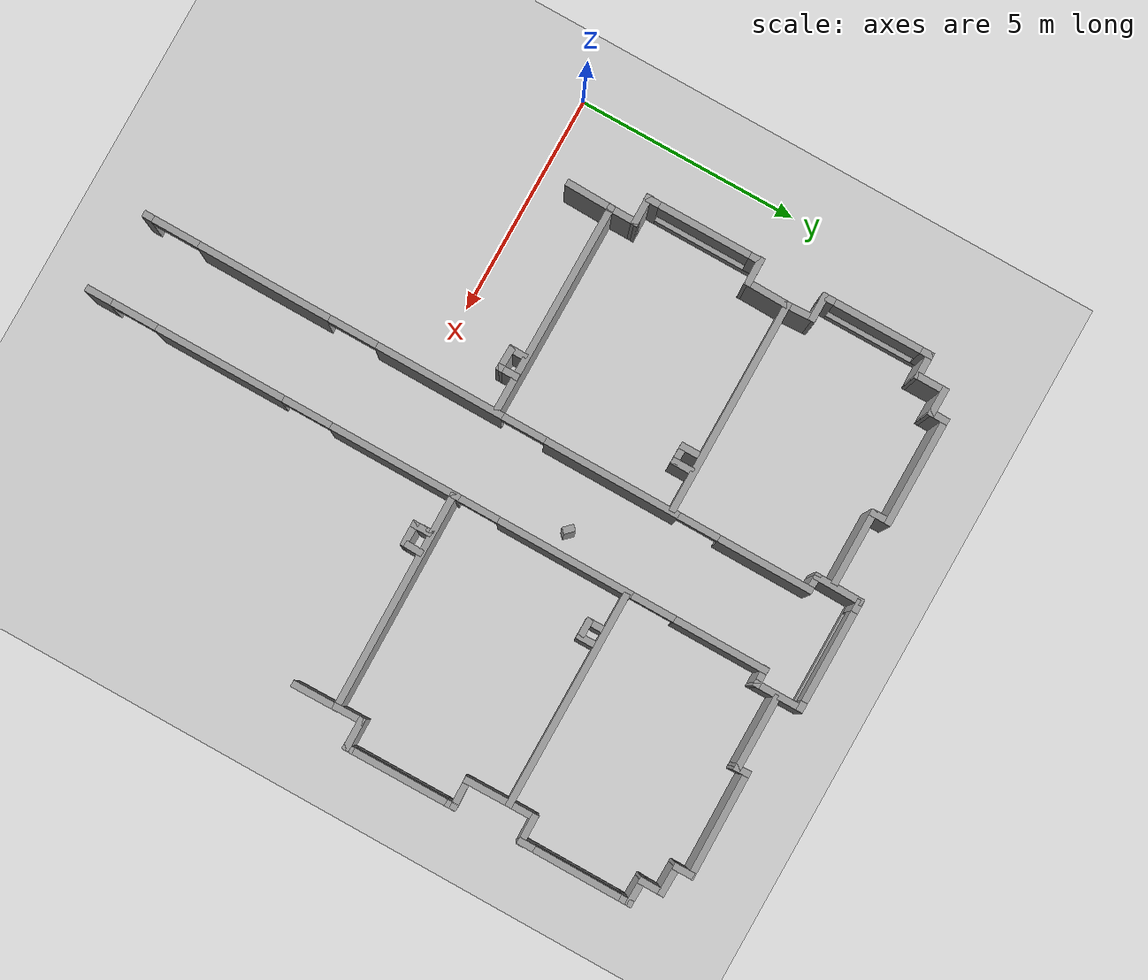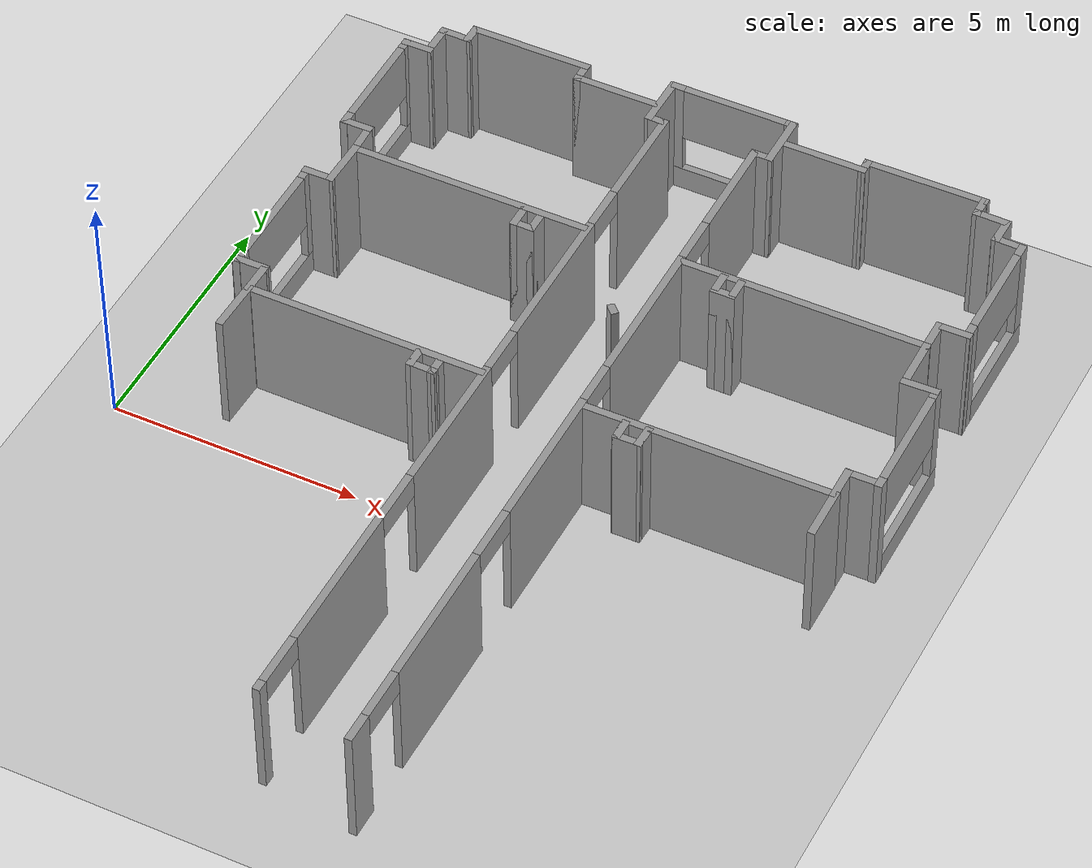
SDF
<sdf version="1.6">
 <world name="default">
  <model name="ground_plane">
   <static>1</static>
   <link name="link">
    <collision name="collision">
     <geometry><plane><normal>0 0 1</normal><size>100 100</size></plane></geometry>
     <surface><friction><ode><mu>100</mu><mu2>50</mu2></ode></friction></surface>
    </collision>
    <visual name="visual">
     <cast_shadows>0</cast_shadows>
     <geometry><plane><normal>0 0 1</normal><size>100 100</size></plane></geometry>
     <material>
      <script><uri>file://media/materials/scripts/gazebo.material</uri><name>Gazebo/Grey</name></script>
     </material>
    </visual>
   </link>
  </model>
  <model name="Ex-diei">
   <pose>7.71315 -3.61023 0 0 -0 0</pose>
   <link name="Wall_100">
    <collision name="Wall_100_Collision">
     <geometry><box><size>0.732631 0.15 2.5</size></box></geometry>
     <pose>0 0 1.25 0 -0 0</pose>
    </collision>
    <visual name="Wall_100_Visual">
     <pose>0 0 1.25 0 -0 0</pose>
     <geometry><box><size>0.732631 0.15 2.5</size></box></geometry>
     <material>
      <script><uri>file://media/materials/scripts/gazebo.material</uri><name>Gazebo/Grey</name></script>
      <ambient>1 1 1 1</ambient>
     </material>
    </visual>
    <pose>5.55171 12.961 0 0 -0 3.12236</pose>
   </link>
   <link name="Wall_101">
    <collision name="Wall_101_Collision">
     <geometry><box><size>0.486208 0.15 2.5</size></box></geometry>
     <pose>0 0 1.25 0 -0 0</pose>
    </collision>
    <visual name="Wall_101_Visual">
     <pose>0 0 1.25 0 -0 0</pose>
     <geometry><box><size>0.486208 0.15 2.5</size></box></geometry>
     <material>
      <script><uri>file://media/materials/scripts/gazebo.material</uri><name>Gazebo/Grey</name></script>
      <ambient>1 1 1 1</ambient>
     </material>
    </visual>
    <pose>5.25829 13.1344 0 0 -0 1.58363</pose>
   </link>
   <link name="Wall_102">
    <collision name="Wall_102_Collision">
     <geometry><box><size>2.49145 0.15 2.5</size></box></geometry>
     <pose>0 0 1.25 0 -0 0</pose>
    </collision>
    <visual name="Wall_102_Visual">
     <pose>0 0 1.25 0 -0 0</pose>
     <geometry><box><size>2.49145 0.15 2.5</size></box></geometry>
     <material>
      <script><uri>file://media/materials/scripts/gazebo.material</uri><name>Gazebo/Grey</name></script>
      <ambient>1 1 1 1</ambient>
     </material>
    </visual>
    <pose>4.08979 13.2913 0 0 0 -3.13236</pose>
   </link>
   <link name="Wall_103">
    <collision name="Wall_103_Collision">
     <geometry><box><size>0.362449 0.15 2.5</size></box></geometry>
     <pose>0 0 1.25 0 -0 0</pose>
    </collision>
    <visual name="Wall_103_Visual">
     <pose>0 0 1.25 0 -0 0</pose>
     <geometry><box><size>0.362449 0.15 2.5</size></box></geometry>
     <material>
      <script><uri>file://media/materials/scripts/gazebo.material</uri><name>Gazebo/Grey</name></script>
      <ambient>1 1 1 1</ambient>
     </material>
    </visual>
    <pose>2.92127 13.1743 0 0 0 -1.55045</pose>
   </link>
   <link name="Wall_104">
    <collision name="Wall_104_Collision">
     <geometry><box><size>1.75 0.15 2.5</size></box></geometry>
     <pose>0 0 1.25 0 -0 0</pose>
    </collision>
    <visual name="Wall_104_Visual">
     <pose>0 0 1.25 0 -0 0</pose>
     <geometry><box><size>1.75 0.15 2.5</size></box></geometry>
     <material>
      <script><uri>file://media/materials/scripts/gazebo.material</uri><name>Gazebo/Grey</name></script>
      <ambient>1 1 1 1</ambient>
     </material>
    </visual>
    <pose>2.11911 13.0681 0 0 -0 3.14159</pose>
   </link>
   <link name="Wall_106">
    <collision name="Wall_106_Collision">
     <geometry><box><size>4.99982 0.15 2.5</size></box></geometry>
     <pose>0 0 1.25 0 -0 0</pose>
    </collision>
    <visual name="Wall_106_Visual">
     <pose>0 0 1.25 0 -0 0</pose>
     <geometry><box><size>4.99982 0.15 2.5</size></box></geometry>
     <material>
      <script><uri>file://media/materials/scripts/gazebo.material</uri><name>Gazebo/Grey</name></script>
      <ambient>1 1 1 1</ambient>
     </material>
    </visual>
    <pose>3.38383 5.40187 0 0 -0 0.00924</pose>
   </link>
   <link name="Wall_107">
    <collision name="Wall_107_Collision">
     <geometry><box><size>0.711686 0.15 2.5</size></box></geometry>
     <pose>0 0 1.25 0 -0 0</pose>
    </collision>
    <visual name="Wall_107_Visual">
     <pose>0 0 1.25 0 -0 0</pose>
     <geometry><box><size>0.711686 0.15 2.5</size></box></geometry>
     <material>
      <script><uri>file://media/materials/scripts/gazebo.material</uri><name>Gazebo/Grey</name></script>
      <ambient>1 1 1 1</ambient>
     </material>
    </visual>
    <pose>5.80561 5.7051 0 0 -0 1.58155</pose>
   </link>
   <link name="Wall_108">
    <collision name="Wall_108_Collision">
     <geometry><box><size>0.750065 0.15 2.5</size></box></geometry>
     <pose>0 0 1.25 0 -0 0</pose>
    </collision>
    <visual name="Wall_108_Visual">
     <pose>0 0 1.25 0 -0 0</pose>
     <geometry><box><size>0.750065 0.15 2.5</size></box></geometry>
     <material>
      <script><uri>file://media/materials/scripts/gazebo.material</uri><name>Gazebo/Grey</name></script>
      <ambient>1 1 1 1</ambient>
     </material>
    </visual>
    <pose>6.10261 5.99563 0 0 -0 0.010773</pose>
   </link>
   <link name="Wall_109">
    <pose>6.40339 7.22457 0 0 -0 1.57542</pose>
    <visual name="Wall_109_Visual_0">
     <pose>-1.19042 0 1.25 0 -0 0</pose>
     <geometry><box><size>0.233536 0.15 2.5</size></box></geometry>
     <material>
      <script><uri>file://media/materials/scripts/gazebo.material</uri><name>Gazebo/Grey</name></script>
      <ambient>1 1 1 1</ambient>
     </material>
    </visual>
    <collision name="Wall_109_Collision_0">
     <geometry><box><size>0.233536 0.15 2.5</size></box></geometry>
     <pose>-1.19042 0 1.25 0 -0 0</pose>
    </collision>
    <visual name="Wall_109_Visual_1">
     <pose>0.116768 0 0.25 0 -0 0</pose>
     <geometry><box><size>2.38084 0.15 0.5</size></box></geometry>
     <material>
      <script><uri>file://media/materials/scripts/gazebo.material</uri><name>Gazebo/Grey</name></script>
      <ambient>1 1 1 1</ambient>
     </material>
    </visual>
    <collision name="Wall_109_Collision_1">
     <geometry><box><size>2.38084 0.15 0.5</size></box></geometry>
     <pose>0.116768 0 0.25 0 -0 0</pose>
    </collision>
    <visual name="Wall_109_Visual_2">
     <pose>1.1833 0 1.5 0 -0 0</pose>
     <geometry><box><size>0.247773 0.15 2</size></box></geometry>
     <material>
      <script><uri>file://media/materials/scripts/gazebo.material</uri><name>Gazebo/Grey</name></script>
      <ambient>1 1 1 1</ambient>
     </material>
    </visual>
    <collision name="Wall_109_Collision_2">
     <geometry><box><size>0.247773 0.15 2</size></box></geometry>
     <pose>1.1833 0 1.5 0 -0 0</pose>
    </collision>
    <visual name="Wall_109_Visual_3">
     <pose>-0.007119 0 1.9 0 -0 0</pose>
     <geometry><box><size>2.13307 0.15 1.2</size></box></geometry>
     <material>
      <script><uri>file://media/materials/scripts/gazebo.material</uri><name>Gazebo/Grey</name></script>
      <ambient>1 1 1 1</ambient>
     </material>
    </visual>
    <collision name="Wall_109_Collision_3">
     <geometry><box><size>2.13307 0.15 1.2</size></box></geometry>
     <pose>-0.007119 0 1.9 0 -0 0</pose>
    </collision>
   </link>
   <link name="Wall_110">
    <collision name="Wall_110_Collision">
     <geometry><box><size>0.737495 0.15 2.5</size></box></geometry>
     <pose>0 0 1.25 0 -0 0</pose>
    </collision>
    <visual name="Wall_110_Visual">
     <pose>0 0 1.25 0 -0 0</pose>
     <geometry><box><size>0.737495 0.15 2.5</size></box></geometry>
     <material>
      <script><uri>file://media/materials/scripts/gazebo.material</uri><name>Gazebo/Grey</name></script>
      <ambient>1 1 1 1</ambient>
     </material>
    </visual>
    <pose>6.09764 8.45351 0 0 0 -3.10858</pose>
   </link>
   <link name="Wall_111">
    <collision name="Wall_111_Collision">
     <geometry><box><size>1.11417 0.15 2.5</size></box></geometry>
     <pose>0 0 1.25 0 -0 0</pose>
    </collision>
    <visual name="Wall_111_Visual">
     <pose>0 0 1.25 0 -0 0</pose>
     <geometry><box><size>1.11417 0.15 2.5</size></box></geometry>
     <material>
      <script><uri>file://media/materials/scripts/gazebo.material</uri><name>Gazebo/Grey</name></script>
      <ambient>1 1 1 1</ambient>
     </material>
    </visual>
    <pose>5.79813 8.93083 0 0 -0 1.58308</pose>
   </link>
   <link name="Wall_113">
    <collision name="Wall_113_Collision">
     <geometry><box><size>0.25 0.15 2.5</size></box></geometry>
     <pose>0 0 1.25 0 -0 0</pose>
    </collision>
    <visual name="Wall_113_Visual">
     <pose>0 0 1.25 0 -0 0</pose>
     <geometry><box><size>0.25 0.15 2.5</size></box></geometry>
     <material>
      <script><uri>file://media/materials/scripts/gazebo.material</uri><name>Gazebo/Grey</name></script>
      <ambient>0 0 0 0</ambient>
     </material>
    </visual>
    <pose>0.387945 7.74777 0 0 -0 2.35619</pose>
   </link>
   <link name="Wall_115">
    <collision name="Wall_115_Collision">
     <geometry><box><size>0.5 0.15 2.5</size></box></geometry>
     <pose>0 0 1.25 0 -0 0</pose>
    </collision>
    <visual name="Wall_115_Visual">
     <pose>0 0 1.25 0 -0 0</pose>
     <geometry><box><size>0.5 0.15 2.5</size></box></geometry>
     <material>
      <script><uri>file://media/materials/scripts/gazebo.material</uri><name>Gazebo/Grey</name></script>
      <ambient>1 1 1 1</ambient>
     </material>
    </visual>
    <pose>1.81628 9.19179 0 0 0 -1.5708</pose>
   </link>
   <link name="Wall_116">
    <collision name="Wall_116_Collision">
     <geometry><box><size>0.5 0.15 2.5</size></box></geometry>
     <pose>0 0 1.25 0 -0 0</pose>
    </collision>
    <visual name="Wall_116_Visual">
     <pose>0 0 1.25 0 -0 0</pose>
     <geometry><box><size>0.5 0.15 2.5</size></box></geometry>
     <material>
      <script><uri>file://media/materials/scripts/gazebo.material</uri><name>Gazebo/Grey</name></script>
      <ambient>1 1 1 1</ambient>
     </material>
    </visual>
    <pose>1.99127 9.01679 0 0 -0 0</pose>
   </link>
   <link name="Wall_117">
    <collision name="Wall_117_Collision">
     <geometry><box><size>0.5 0.15 2.5</size></box></geometry>
     <pose>0 0 1.25 0 -0 0</pose>
    </collision>
    <visual name="Wall_117_Visual">
     <pose>0 0 1.25 0 -0 0</pose>
     <geometry><box><size>0.5 0.15 2.5</size></box></geometry>
     <material>
      <script><uri>file://media/materials/scripts/gazebo.material</uri><name>Gazebo/Grey</name></script>
      <ambient>1 1 1 1</ambient>
     </material>
    </visual>
    <pose>2.16628 9.19179 0 0 -0 1.5708</pose>
   </link>
   <link name="Wall_124">
    <collision name="Wall_124_Collision">
     <geometry><box><size>1.0872 0.15 2.5</size></box></geometry>
     <pose>0 0 1.25 0 -0 0</pose>
    </collision>
    <visual name="Wall_124_Visual">
     <pose>0 0 1.25 0 -0 0</pose>
     <geometry><box><size>1.0872 0.15 2.5</size></box></geometry>
     <material>
      <script><uri>file://media/materials/scripts/gazebo.material</uri><name>Gazebo/Grey</name></script>
      <ambient>1 1 1 1</ambient>
     </material>
    </visual>
    <pose>5.82137 4.94714 0 0 -0 1.57973</pose>
   </link>
   <link name="Wall_126">
    <collision name="Wall_126_Collision">
     <geometry><box><size>0.25 0.15 2.5</size></box></geometry>
     <pose>0 0 1.25 0 -0 0</pose>
    </collision>
    <visual name="Wall_126_Visual">
     <pose>0 0 1.25 0 -0 0</pose>
     <geometry><box><size>0.25 0.15 2.5</size></box></geometry>
     <material>
      <script><uri>file://media/materials/scripts/gazebo.material</uri><name>Gazebo/Grey</name></script>
      <ambient>1 1 1 1</ambient>
     </material>
    </visual>
    <pose>1.81991 5.27998 0 0 0 -1.5708</pose>
   </link>
   <link name="Wall_128">
    <collision name="Wall_128_Collision">
     <geometry><box><size>0.493722 0.15 2.5</size></box></geometry>
     <pose>0 0 1.25 0 -0 0</pose>
    </collision>
    <visual name="Wall_128_Visual">
     <pose>0 0 1.25 0 -0 0</pose>
     <geometry><box><size>0.493722 0.15 2.5</size></box></geometry>
     <material>
      <script><uri>file://media/materials/scripts/gazebo.material</uri><name>Gazebo/Grey</name></script>
      <ambient>1 1 1 1</ambient>
     </material>
    </visual>
    <pose>2.26046 5.16946 0 0 0 -1.60137</pose>
   </link>
   <link name="Wall_129">
    <collision name="Wall_129_Collision">
     <geometry><box><size>0.575524 0.15 2.5</size></box></geometry>
     <pose>0 0 1.25 0 -0 0</pose>
    </collision>
    <visual name="Wall_129_Visual">
     <pose>0 0 1.25 0 -0 0</pose>
     <geometry><box><size>0.575524 0.15 2.5</size></box></geometry>
     <material>
      <script><uri>file://media/materials/scripts/gazebo.material</uri><name>Gazebo/Grey</name></script>
      <ambient>1 1 1 1</ambient>
     </material>
    </visual>
    <pose>2.04245 4.99558 0 0 0 -3.13172</pose>
   </link>
   <link name="Wall_130">
    <collision name="Wall_130_Collision">
     <geometry><box><size>0.467311 0.15 2.5</size></box></geometry>
     <pose>0 0 1.25 0 -0 0</pose>
    </collision>
    <visual name="Wall_130_Visual">
     <pose>0 0 1.25 0 -0 0</pose>
     <geometry><box><size>0.467311 0.15 2.5</size></box></geometry>
     <material>
      <script><uri>file://media/materials/scripts/gazebo.material</uri><name>Gazebo/Grey</name></script>
      <ambient>1 1 1 1</ambient>
     </material>
    </visual>
    <pose>1.82812 5.15213 0 0 -0 1.58073</pose>
   </link>
   <link name="Wall_2">
    <collision name="Wall_2_Collision">
     <geometry><box><size>1.13505 0.15 2.5</size></box></geometry>
     <pose>0 0 1.25 0 -0 0</pose>
    </collision>
    <visual name="Wall_2_Visual">
     <pose>0 0 1.25 0 -0 0</pose>
     <geometry><box><size>1.13505 0.15 2.5</size></box></geometry>
     <material>
      <script><uri>file://media/materials/scripts/gazebo.material</uri><name>Gazebo/Grey</name></script>
      <ambient>1 1 1 1</ambient>
     </material>
    </visual>
    <pose>-1.22223 13.0876 0 0 0 -1.58602</pose>
   </link>
   <link name="Wall_3">
    <collision name="Wall_3_Collision">
     <geometry><box><size>0.447338 0.15 2.5</size></box></geometry>
     <pose>0 0 1.25 0 -0 0</pose>
    </collision>
    <visual name="Wall_3_Visual">
     <pose>0 0 1.25 0 -0 0</pose>
     <geometry><box><size>0.447338 0.15 2.5</size></box></geometry>
     <material>
      <script><uri>file://media/materials/scripts/gazebo.material</uri><name>Gazebo/Grey</name></script>
      <ambient>1 1 1 1</ambient>
     </material>
    </visual>
    <pose>-1.08116 12.5897 0 0 0 -0.036543</pose>
   </link>
   <link name="Wall_31">
    <pose>0.916529 4.73851 0 0 -0 1.56885</pose>
    <visual name="Wall_31_Visual_0">
     <pose>-7.62024 0 1.25 0 -0 0</pose>
     <geometry><box><size>0.598912 0.15 2.5</size></box></geometry>
     <material>
      <script><uri>file://media/materials/scripts/gazebo.material</uri><name>Gazebo/Grey</name></script>
      <ambient>1 1 1 1</ambient>
     </material>
    </visual>
    <collision name="Wall_31_Collision_0">
     <geometry><box><size>0.598912 0.15 2.5</size></box></geometry>
     <pose>-7.62024 0 1.25 0 -0 0</pose>
    </collision>
    <visual name="Wall_31_Visual_1">
     <pose>-4.79958 0 1.25 0 -0 0</pose>
     <geometry><box><size>2.95172 0.15 2.5</size></box></geometry>
     <material>
      <script><uri>file://media/materials/scripts/gazebo.material</uri><name>Gazebo/Grey</name></script>
      <ambient>1 1 1 1</ambient>
     </material>
    </visual>
    <collision name="Wall_31_Collision_1">
     <geometry><box><size>2.95172 0.15 2.5</size></box></geometry>
     <pose>-4.79958 0 1.25 0 -0 0</pose>
    </collision>
    <visual name="Wall_31_Visual_2">
     <pose>-0.714987 0 1.25 0 -0 0</pose>
     <geometry><box><size>2.99001 0.15 2.5</size></box></geometry>
     <material>
      <script><uri>file://media/materials/scripts/gazebo.material</uri><name>Gazebo/Grey</name></script>
      <ambient>1 1 1 1</ambient>
     </material>
    </visual>
    <collision name="Wall_31_Collision_2">
     <geometry><box><size>2.99001 0.15 2.5</size></box></geometry>
     <pose>-0.714987 0 1.25 0 -0 0</pose>
    </collision>
    <visual name="Wall_31_Visual_3">
     <pose>3.22873 0 1.25 0 -0 0</pose>
     <geometry><box><size>3.09741 0.15 2.5</size></box></geometry>
     <material>
      <script><uri>file://media/materials/scripts/gazebo.material</uri><name>Gazebo/Grey</name></script>
      <ambient>1 1 1 1</ambient>
     </material>
    </visual>
    <collision name="Wall_31_Collision_3">
     <geometry><box><size>3.09741 0.15 2.5</size></box></geometry>
     <pose>3.22873 0 1.25 0 -0 0</pose>
    </collision>
    <visual name="Wall_31_Visual_4">
     <pose>6.84281 0 1.25 0 -0 0</pose>
     <geometry><box><size>2.15378 0.15 2.5</size></box></geometry>
     <material>
      <script><uri>file://media/materials/scripts/gazebo.material</uri><name>Gazebo/Grey</name></script>
      <ambient>1 1 1 1</ambient>
     </material>
    </visual>
    <collision name="Wall_31_Collision_4">
     <geometry><box><size>2.15378 0.15 2.5</size></box></geometry>
     <pose>6.84281 0 1.25 0 -0 0</pose>
    </collision>
    <visual name="Wall_31_Visual_5">
     <pose>-6.79811 0 2.25 0 -0 0</pose>
     <geometry><box><size>1.04534 0.15 0.5</size></box></geometry>
     <material>
      <script><uri>file://media/materials/scripts/gazebo.material</uri><name>Gazebo/Grey</name></script>
      <ambient>1 1 1 1</ambient>
     </material>
    </visual>
    <collision name="Wall_31_Collision_5">
     <geometry><box><size>1.04534 0.15 0.5</size></box></geometry>
     <pose>-6.79811 0 2.25 0 -0 0</pose>
    </collision>
    <visual name="Wall_31_Visual_6">
     <pose>-2.76686 0 2.25 0 -0 0</pose>
     <geometry><box><size>1.11373 0.15 0.5</size></box></geometry>
     <material>
      <script><uri>file://media/materials/scripts/gazebo.material</uri><name>Gazebo/Grey</name></script>
      <ambient>1 1 1 1</ambient>
     </material>
    </visual>
    <collision name="Wall_31_Collision_6">
     <geometry><box><size>1.11373 0.15 0.5</size></box></geometry>
     <pose>-2.76686 0 2.25 0 -0 0</pose>
    </collision>
    <visual name="Wall_31_Visual_7">
     <pose>1.23002 0 2.25 0 -0 0</pose>
     <geometry><box><size>0.9 0.15 0.5</size></box></geometry>
     <material>
      <script><uri>file://media/materials/scripts/gazebo.material</uri><name>Gazebo/Grey</name></script>
      <ambient>1 1 1 1</ambient>
     </material>
    </visual>
    <collision name="Wall_31_Collision_7">
     <geometry><box><size>0.9 0.15 0.5</size></box></geometry>
     <pose>1.23002 0 2.25 0 -0 0</pose>
    </collision>
    <visual name="Wall_31_Visual_8">
     <pose>5.27168 0 2.25 0 -0 0</pose>
     <geometry><box><size>0.988484 0.15 0.5</size></box></geometry>
     <material>
      <script><uri>file://media/materials/scripts/gazebo.material</uri><name>Gazebo/Grey</name></script>
      <ambient>1 1 1 1</ambient>
     </material>
    </visual>
    <collision name="Wall_31_Collision_8">
     <geometry><box><size>0.988484 0.15 0.5</size></box></geometry>
     <pose>5.27168 0 2.25 0 -0 0</pose>
    </collision>
   </link>
   <link name="Wall_32">
    <collision name="Wall_32_Collision">
     <geometry><box><size>0.477444 0.15 2.5</size></box></geometry>
     <pose>0 0 1.25 0 -0 0</pose>
    </collision>
    <visual name="Wall_32_Visual">
     <pose>0 0 1.25 0 -0 0</pose>
     <geometry><box><size>0.477444 0.15 2.5</size></box></geometry>
     <material>
      <script><uri>file://media/materials/scripts/gazebo.material</uri><name>Gazebo/Grey</name></script>
      <ambient>1 1 1 1</ambient>
     </material>
    </visual>
    <pose>1.08807 12.5845 0 0 -0 0.007836</pose>
   </link>
   <link name="Wall_33">
    <collision name="Wall_33_Collision">
     <geometry><box><size>1.15594 0.15 2.5</size></box></geometry>
     <pose>0 0 1.25 0 -0 0</pose>
    </collision>
    <visual name="Wall_33_Visual">
     <pose>0 0 1.25 0 -0 0</pose>
     <geometry><box><size>1.15594 0.15 2.5</size></box></geometry>
     <material>
      <script><uri>file://media/materials/scripts/gazebo.material</uri><name>Gazebo/Grey</name></script>
      <ambient>1 1 1 1</ambient>
     </material>
    </visual>
    <pose>1.25381 13.0887 0 0 -0 1.56678</pose>
   </link>
   <link name="Wall_34">
    <pose>0.038325 13.5917 0 0 -0 3.14159</pose>
    <visual name="Wall_34_Visual_0">
     <pose>-1.17838 0 1.25 0 -0 0</pose>
     <geometry><box><size>0.218241 0.15 2.5</size></box></geometry>
     <material>
      <script><uri>file://media/materials/scripts/gazebo.material</uri><name>Gazebo/Grey</name></script>
      <ambient>1 1 1 1</ambient>
     </material>
    </visual>
    <collision name="Wall_34_Collision_0">
     <geometry><box><size>0.218241 0.15 2.5</size></box></geometry>
     <pose>-1.17838 0 1.25 0 -0 0</pose>
    </collision>
    <visual name="Wall_34_Visual_1">
     <pose>0.109121 0 0.25 0 -0 0</pose>
     <geometry><box><size>2.35676 0.15 0.5</size></box></geometry>
     <material>
      <script><uri>file://media/materials/scripts/gazebo.material</uri><name>Gazebo/Grey</name></script>
      <ambient>1 1 1 1</ambient>
     </material>
    </visual>
    <collision name="Wall_34_Collision_1">
     <geometry><box><size>2.35676 0.15 0.5</size></box></geometry>
     <pose>0.109121 0 0.25 0 -0 0</pose>
    </collision>
    <visual name="Wall_34_Visual_2">
     <pose>1.14473 0 1.5 0 -0 0</pose>
     <geometry><box><size>0.285533 0.15 2</size></box></geometry>
     <material>
      <script><uri>file://media/materials/scripts/gazebo.material</uri><name>Gazebo/Grey</name></script>
      <ambient>1 1 1 1</ambient>
     </material>
    </visual>
    <collision name="Wall_34_Collision_2">
     <geometry><box><size>0.285533 0.15 2</size></box></geometry>
     <pose>1.14473 0 1.5 0 -0 0</pose>
    </collision>
    <visual name="Wall_34_Visual_3">
     <pose>-0.033646 0 1.9 0 -0 0</pose>
     <geometry><box><size>2.07123 0.15 1.2</size></box></geometry>
     <material>
      <script><uri>file://media/materials/scripts/gazebo.material</uri><name>Gazebo/Grey</name></script>
      <ambient>1 1 1 1</ambient>
     </material>
    </visual>
    <collision name="Wall_34_Collision_3">
     <geometry><box><size>2.07123 0.15 1.2</size></box></geometry>
     <pose>-0.033646 0 1.9 0 -0 0</pose>
    </collision>
   </link>
   <link name="Wall_36">
    <collision name="Wall_36_Collision">
     <geometry><box><size>4.88074 0.15 2.5</size></box></geometry>
     <pose>0 0 1.25 0 -0 0</pose>
    </collision>
    <visual name="Wall_36_Visual">
     <pose>0 0 1.25 0 -0 0</pose>
     <geometry><box><size>4.88074 0.15 2.5</size></box></geometry>
     <material>
      <script><uri>file://media/materials/scripts/gazebo.material</uri><name>Gazebo/Grey</name></script>
      <ambient>1 1 1 1</ambient>
     </material>
    </visual>
    <pose>-3.38208 9.39054 0 0 0 -3.14141</pose>
   </link>
   <link name="Wall_37">
    <collision name="Wall_37_Collision">
     <geometry><box><size>0.730954 0.15 2.5</size></box></geometry>
     <pose>0 0 1.25 0 -0 0</pose>
    </collision>
    <visual name="Wall_37_Visual">
     <pose>0 0 1.25 0 -0 0</pose>
     <geometry><box><size>0.730954 0.15 2.5</size></box></geometry>
     <material>
      <script><uri>file://media/materials/scripts/gazebo.material</uri><name>Gazebo/Grey</name></script>
      <ambient>1 1 1 1</ambient>
     </material>
    </visual>
    <pose>-5.75972 9.68031 0 0 -0 1.61309</pose>
   </link>
   <link name="Wall_38">
    <collision name="Wall_38_Collision">
     <geometry><box><size>0.647807 0.15 2.5</size></box></geometry>
     <pose>0 0 1.25 0 -0 0</pose>
    </collision>
    <visual name="Wall_38_Visual">
     <pose>0 0 1.25 0 -0 0</pose>
     <geometry><box><size>0.647807 0.15 2.5</size></box></geometry>
     <material>
      <script><uri>file://media/materials/scripts/gazebo.material</uri><name>Gazebo/Grey</name></script>
      <ambient>1 1 1 1</ambient>
     </material>
    </visual>
    <pose>-6.02073 9.97053 0 0 -0 3.14159</pose>
   </link>
   <link name="Wall_39">
    <pose>-6.27121 11.185 0 0 -0 1.57224</pose>
    <visual name="Wall_39_Visual_0">
     <pose>-1.1374 0 1.25 0 -0 0</pose>
     <geometry><box><size>0.311789 0.15 2.5</size></box></geometry>
     <material>
      <script><uri>file://media/materials/scripts/gazebo.material</uri><name>Gazebo/Grey</name></script>
      <ambient>1 1 1 1</ambient>
     </material>
    </visual>
    <collision name="Wall_39_Collision_0">
     <geometry><box><size>0.311789 0.15 2.5</size></box></geometry>
     <pose>-1.1374 0 1.25 0 -0 0</pose>
    </collision>
    <visual name="Wall_39_Visual_1">
     <pose>0.155894 0 0.25 0 -0 0</pose>
     <geometry><box><size>2.27479 0.15 0.5</size></box></geometry>
     <material>
      <script><uri>file://media/materials/scripts/gazebo.material</uri><name>Gazebo/Grey</name></script>
      <ambient>1 1 1 1</ambient>
     </material>
    </visual>
    <collision name="Wall_39_Collision_1">
     <geometry><box><size>2.27479 0.15 0.5</size></box></geometry>
     <pose>0.155894 0 0.25 0 -0 0</pose>
    </collision>
    <visual name="Wall_39_Visual_2">
     <pose>1.15812 0 1.5 0 -0 0</pose>
     <geometry><box><size>0.270346 0.15 2</size></box></geometry>
     <material>
      <script><uri>file://media/materials/scripts/gazebo.material</uri><name>Gazebo/Grey</name></script>
      <ambient>1 1 1 1</ambient>
     </material>
    </visual>
    <collision name="Wall_39_Collision_2">
     <geometry><box><size>0.270346 0.15 2</size></box></geometry>
     <pose>1.15812 0 1.5 0 -0 0</pose>
    </collision>
    <visual name="Wall_39_Visual_3">
     <pose>0.020721 0 1.9 0 -0 0</pose>
     <geometry><box><size>2.00445 0.15 1.2</size></box></geometry>
     <material>
      <script><uri>file://media/materials/scripts/gazebo.material</uri><name>Gazebo/Grey</name></script>
      <ambient>1 1 1 1</ambient>
     </material>
    </visual>
    <collision name="Wall_39_Collision_3">
     <geometry><box><size>2.00445 0.15 1.2</size></box></geometry>
     <pose>0.020721 0 1.9 0 -0 0</pose>
    </collision>
   </link>
   <link name="Wall_4">
    <pose>-0.956882 4.87054 0 0 0 -1.57459</pose>
    <visual name="Wall_4_Visual_0">
     <pose>-6.7014 0 1.25 0 -0 0</pose>
     <geometry><box><size>2.17477 0.15 2.5</size></box></geometry>
     <material>
      <script><uri>file://media/materials/scripts/gazebo.material</uri><name>Gazebo/Grey</name></script>
      <ambient>1 1 1 1</ambient>
     </material>
    </visual>
    <collision name="Wall_4_Collision_0">
     <geometry><box><size>2.17477 0.15 2.5</size></box></geometry>
     <pose>-6.7014 0 1.25 0 -0 0</pose>
    </collision>
    <visual name="Wall_4_Visual_1">
     <pose>-3.13377 0 1.25 0 -0 0</pose>
     <geometry><box><size>3.10149 0.15 2.5</size></box></geometry>
     <material>
      <script><uri>file://media/materials/scripts/gazebo.material</uri><name>Gazebo/Grey</name></script>
      <ambient>1 1 1 1</ambient>
     </material>
    </visual>
    <collision name="Wall_4_Collision_1">
     <geometry><box><size>3.10149 0.15 2.5</size></box></geometry>
     <pose>-3.13377 0 1.25 0 -0 0</pose>
    </collision>
    <visual name="Wall_4_Visual_2">
     <pose>0.872616 0 1.25 0 -0 0</pose>
     <geometry><box><size>2.93432 0.15 2.5</size></box></geometry>
     <material>
      <script><uri>file://media/materials/scripts/gazebo.material</uri><name>Gazebo/Grey</name></script>
      <ambient>1 1 1 1</ambient>
     </material>
    </visual>
    <collision name="Wall_4_Collision_2">
     <geometry><box><size>2.93432 0.15 2.5</size></box></geometry>
     <pose>0.872616 0 1.25 0 -0 0</pose>
    </collision>
    <visual name="Wall_4_Visual_3">
     <pose>4.97019 0 1.25 0 -0 0</pose>
     <geometry><box><size>3.0479 0.15 2.5</size></box></geometry>
     <material>
      <script><uri>file://media/materials/scripts/gazebo.material</uri><name>Gazebo/Grey</name></script>
      <ambient>1 1 1 1</ambient>
     </material>
    </visual>
    <collision name="Wall_4_Collision_3">
     <geometry><box><size>3.0479 0.15 2.5</size></box></geometry>
     <pose>4.97019 0 1.25 0 -0 0</pose>
    </collision>
    <visual name="Wall_4_Visual_4">
     <pose>7.6749 0 1.25 0 -0 0</pose>
     <geometry><box><size>0.22777 0.15 2.5</size></box></geometry>
     <material>
      <script><uri>file://media/materials/scripts/gazebo.material</uri><name>Gazebo/Grey</name></script>
      <ambient>1 1 1 1</ambient>
     </material>
    </visual>
    <collision name="Wall_4_Collision_4">
     <geometry><box><size>0.22777 0.15 2.5</size></box></geometry>
     <pose>7.6749 0 1.25 0 -0 0</pose>
    </collision>
    <visual name="Wall_4_Visual_5">
     <pose>-5.14926 0 2.25 0 -0 0</pose>
     <geometry><box><size>0.929494 0.15 0.5</size></box></geometry>
     <material>
      <script><uri>file://media/materials/scripts/gazebo.material</uri><name>Gazebo/Grey</name></script>
      <ambient>1 1 1 1</ambient>
     </material>
    </visual>
    <collision name="Wall_4_Collision_5">
     <geometry><box><size>0.929494 0.15 0.5</size></box></geometry>
     <pose>-5.14926 0 2.25 0 -0 0</pose>
    </collision>
    <visual name="Wall_4_Visual_6">
     <pose>-1.08878 0 2.25 0 -0 0</pose>
     <geometry><box><size>0.988483 0.15 0.5</size></box></geometry>
     <material>
      <script><uri>file://media/materials/scripts/gazebo.material</uri><name>Gazebo/Grey</name></script>
      <ambient>1 1 1 1</ambient>
     </material>
    </visual>
    <collision name="Wall_4_Collision_6">
     <geometry><box><size>0.988483 0.15 0.5</size></box></geometry>
     <pose>-1.08878 0 2.25 0 -0 0</pose>
    </collision>
    <visual name="Wall_4_Visual_7">
     <pose>2.89301 0 2.25 0 -0 0</pose>
     <geometry><box><size>1.10646 0.15 0.5</size></box></geometry>
     <material>
      <script><uri>file://media/materials/scripts/gazebo.material</uri><name>Gazebo/Grey</name></script>
      <ambient>1 1 1 1</ambient>
     </material>
    </visual>
    <collision name="Wall_4_Collision_7">
     <geometry><box><size>1.10646 0.15 0.5</size></box></geometry>
     <pose>2.89301 0 2.25 0 -0 0</pose>
    </collision>
    <visual name="Wall_4_Visual_8">
     <pose>7.02757 0 2.25 0 -0 0</pose>
     <geometry><box><size>1.06687 0.15 0.5</size></box></geometry>
     <material>
      <script><uri>file://media/materials/scripts/gazebo.material</uri><name>Gazebo/Grey</name></script>
      <ambient>1 1 1 1</ambient>
     </material>
    </visual>
    <collision name="Wall_4_Collision_8">
     <geometry><box><size>1.06687 0.15 0.5</size></box></geometry>
     <pose>7.02757 0 2.25 0 -0 0</pose>
    </collision>
   </link>
   <link name="Wall_40">
    <collision name="Wall_40_Collision">
     <geometry><box><size>0.639043 0.15 2.5</size></box></geometry>
     <pose>0 0 1.25 0 -0 0</pose>
    </collision>
    <visual name="Wall_40_Visual">
     <pose>0 0 1.25 0 -0 0</pose>
     <geometry><box><size>0.639043 0.15 2.5</size></box></geometry>
     <material>
      <script><uri>file://media/materials/scripts/gazebo.material</uri><name>Gazebo/Grey</name></script>
      <ambient>1 1 1 1</ambient>
     </material>
    </visual>
    <pose>-6.02845 12.4072 0 0 -0 0.015925</pose>
   </link>
   <link name="Wall_41">
    <collision name="Wall_41_Collision">
     <geometry><box><size>0.75 0.15 2.5</size></box></geometry>
     <pose>0 0 1.25 0 -0 0</pose>
    </collision>
    <visual name="Wall_41_Visual">
     <pose>0 0 1.25 0 -0 0</pose>
     <geometry><box><size>0.75 0.15 2.5</size></box></geometry>
     <material>
      <script><uri>file://media/materials/scripts/gazebo.material</uri><name>Gazebo/Grey</name></script>
      <ambient>1 1 1 1</ambient>
     </material>
    </visual>
    <pose>-5.78393 12.7111 0 0 -0 1.5708</pose>
   </link>
   <link name="Wall_42">
    <collision name="Wall_42_Collision">
     <geometry><box><size>0.670455 0.15 2.5</size></box></geometry>
     <pose>0 0 1.25 0 -0 0</pose>
    </collision>
    <visual name="Wall_42_Visual">
     <pose>0 0 1.25 0 -0 0</pose>
     <geometry><box><size>0.670455 0.15 2.5</size></box></geometry>
     <material>
      <script><uri>file://media/materials/scripts/gazebo.material</uri><name>Gazebo/Grey</name></script>
      <ambient>1 1 1 1</ambient>
     </material>
    </visual>
    <pose>-5.52371 13.0091 0 0 0 -0.007669</pose>
   </link>
   <link name="Wall_43">
    <collision name="Wall_43_Collision">
     <geometry><box><size>0.457134 0.15 2.5</size></box></geometry>
     <pose>0 0 1.25 0 -0 0</pose>
    </collision>
    <visual name="Wall_43_Visual">
     <pose>0 0 1.25 0 -0 0</pose>
     <geometry><box><size>0.457134 0.15 2.5</size></box></geometry>
     <material>
      <script><uri>file://media/materials/scripts/gazebo.material</uri><name>Gazebo/Grey</name></script>
      <ambient>1 1 1 1</ambient>
     </material>
    </visual>
    <pose>-5.26121 13.1607 0 0 -0 1.55595</pose>
   </link>
   <link name="Wall_44">
    <collision name="Wall_44_Collision">
     <geometry><box><size>2.5 0.15 2.5</size></box></geometry>
     <pose>0 0 1.25 0 -0 0</pose>
    </collision>
    <visual name="Wall_44_Visual">
     <pose>0 0 1.25 0 -0 0</pose>
     <geometry><box><size>2.5 0.15 2.5</size></box></geometry>
     <material>
      <script><uri>file://media/materials/scripts/gazebo.material</uri><name>Gazebo/Grey</name></script>
      <ambient>1 1 1 1</ambient>
     </material>
    </visual>
    <pose>-4.08393 13.3142 0 0 -0 0</pose>
   </link>
   <link name="Wall_45">
    <collision name="Wall_45_Collision">
     <geometry><box><size>0.5 0.15 2.5</size></box></geometry>
     <pose>0 0 1.25 0 -0 0</pose>
    </collision>
    <visual name="Wall_45_Visual">
     <pose>0 0 1.25 0 -0 0</pose>
     <geometry><box><size>0.5 0.15 2.5</size></box></geometry>
     <material>
      <script><uri>file://media/materials/scripts/gazebo.material</uri><name>Gazebo/Grey</name></script>
      <ambient>1 1 1 1</ambient>
     </material>
    </visual>
    <pose>-2.90893 13.1392 0 0 0 -1.5708</pose>
   </link>
   <link name="Wall_46">
    <collision name="Wall_46_Collision">
     <geometry><box><size>1.75 0.15 2.5</size></box></geometry>
     <pose>0 0 1.25 0 -0 0</pose>
    </collision>
    <visual name="Wall_46_Visual">
     <pose>0 0 1.25 0 -0 0</pose>
     <geometry><box><size>1.75 0.15 2.5</size></box></geometry>
     <material>
      <script><uri>file://media/materials/scripts/gazebo.material</uri><name>Gazebo/Grey</name></script>
      <ambient>1 1 1 1</ambient>
     </material>
    </visual>
    <pose>-2.10893 12.9642 0 0 -0 0</pose>
   </link>
   <link name="Wall_48">
    <collision name="Wall_48_Collision">
     <geometry><box><size>4.86051 0.15 2.5</size></box></geometry>
     <pose>0 0 1.25 0 -0 0</pose>
    </collision>
    <visual name="Wall_48_Visual">
     <pose>0 0 1.25 0 -0 0</pose>
     <geometry><box><size>4.86051 0.15 2.5</size></box></geometry>
     <material>
      <script><uri>file://media/materials/scripts/gazebo.material</uri><name>Gazebo/Grey</name></script>
      <ambient>1 1 1 1</ambient>
     </material>
    </visual>
    <pose>-3.36413 5.30282 0 0 -0 3.14037</pose>
   </link>
   <link name="Wall_49">
    <collision name="Wall_49_Collision">
     <geometry><box><size>0.722825 0.15 2.5</size></box></geometry>
     <pose>0 0 1.25 0 -0 0</pose>
    </collision>
    <visual name="Wall_49_Visual">
     <pose>0 0 1.25 0 -0 0</pose>
     <geometry><box><size>0.722825 0.15 2.5</size></box></geometry>
     <material>
      <script><uri>file://media/materials/scripts/gazebo.material</uri><name>Gazebo/Grey</name></script>
      <ambient>1 1 1 1</ambient>
     </material>
    </visual>
    <pose>-5.71784 5.59206 0 0 -0 1.56543</pose>
   </link>
   <link name="Wall_50">
    <collision name="Wall_50_Collision">
     <geometry><box><size>0.708875 0.15 2.5</size></box></geometry>
     <pose>0 0 1.25 0 -0 0</pose>
    </collision>
    <visual name="Wall_50_Visual">
     <pose>0 0 1.25 0 -0 0</pose>
     <geometry><box><size>0.708875 0.15 2.5</size></box></geometry>
     <material>
      <script><uri>file://media/materials/scripts/gazebo.material</uri><name>Gazebo/Grey</name></script>
      <ambient>1 1 1 1</ambient>
     </material>
    </visual>
    <pose>-5.99573 5.87609 0 0 0 -3.13321</pose>
   </link>
   <link name="Wall_51">
    <pose>-6.26366 7.168 0 0 -0 1.5708</pose>
    <visual name="Wall_51_Visual_0">
     <pose>-1.2019 0 1.25 0 -0 0</pose>
     <geometry><box><size>0.346206 0.15 2.5</size></box></geometry>
     <material>
      <script><uri>file://media/materials/scripts/gazebo.material</uri><name>Gazebo/Grey</name></script>
      <ambient>1 1 1 1</ambient>
     </material>
    </visual>
    <collision name="Wall_51_Collision_0">
     <geometry><box><size>0.346206 0.15 2.5</size></box></geometry>
     <pose>-1.2019 0 1.25 0 -0 0</pose>
    </collision>
    <visual name="Wall_51_Visual_1">
     <pose>0.173103 0 0.25 0 -0 0</pose>
     <geometry><box><size>2.40379 0.15 0.5</size></box></geometry>
     <material>
      <script><uri>file://media/materials/scripts/gazebo.material</uri><name>Gazebo/Grey</name></script>
      <ambient>1 1 1 1</ambient>
     </material>
    </visual>
    <collision name="Wall_51_Collision_1">
     <geometry><box><size>2.40379 0.15 0.5</size></box></geometry>
     <pose>0.173103 0 0.25 0 -0 0</pose>
    </collision>
    <visual name="Wall_51_Visual_2">
     <pose>1.22199 0 1.5 0 -0 0</pose>
     <geometry><box><size>0.306028 0.15 2</size></box></geometry>
     <material>
      <script><uri>file://media/materials/scripts/gazebo.material</uri><name>Gazebo/Grey</name></script>
      <ambient>1 1 1 1</ambient>
     </material>
    </visual>
    <collision name="Wall_51_Collision_2">
     <geometry><box><size>0.306028 0.15 2</size></box></geometry>
     <pose>1.22199 0 1.5 0 -0 0</pose>
    </collision>
    <visual name="Wall_51_Visual_3">
     <pose>0.020089 0 1.9 0 -0 0</pose>
     <geometry><box><size>2.09777 0.15 1.2</size></box></geometry>
     <material>
      <script><uri>file://media/materials/scripts/gazebo.material</uri><name>Gazebo/Grey</name></script>
      <ambient>1 1 1 1</ambient>
     </material>
    </visual>
    <collision name="Wall_51_Collision_3">
     <geometry><box><size>2.09777 0.15 1.2</size></box></geometry>
     <pose>0.020089 0 1.9 0 -0 0</pose>
    </collision>
   </link>
   <link name="Wall_52">
    <collision name="Wall_52_Collision">
     <geometry><box><size>0.661032 0.15 2.5</size></box></geometry>
     <pose>0 0 1.25 0 -0 0</pose>
    </collision>
    <visual name="Wall_52_Visual">
     <pose>0 0 1.25 0 -0 0</pose>
     <geometry><box><size>0.661032 0.15 2.5</size></box></geometry>
     <material>
      <script><uri>file://media/materials/scripts/gazebo.material</uri><name>Gazebo/Grey</name></script>
      <ambient>1 1 1 1</ambient>
     </material>
    </visual>
    <pose>-6.01966 8.47662 0 0 -0 0.011252</pose>
   </link>
   <link name="Wall_53">
    <collision name="Wall_53_Collision">
     <geometry><box><size>1.06075 0.15 2.5</size></box></geometry>
     <pose>0 0 1.25 0 -0 0</pose>
    </collision>
    <visual name="Wall_53_Visual">
     <pose>0 0 1.25 0 -0 0</pose>
     <geometry><box><size>1.06075 0.15 2.5</size></box></geometry>
     <material>
      <script><uri>file://media/materials/scripts/gazebo.material</uri><name>Gazebo/Grey</name></script>
      <ambient>1 1 1 1</ambient>
     </material>
    </visual>
    <pose>-5.7558 8.9348 0 0 -0 1.55243</pose>
   </link>
   <link name="Wall_55">
    <collision name="Wall_55_Collision">
     <geometry><box><size>0.5 0.15 2.5</size></box></geometry>
     <pose>0 0 1.25 0 -0 0</pose>
    </collision>
    <visual name="Wall_55_Visual">
     <pose>0 0 1.25 0 -0 0</pose>
     <geometry><box><size>0.5 0.15 2.5</size></box></geometry>
     <material>
      <script><uri>file://media/materials/scripts/gazebo.material</uri><name>Gazebo/Grey</name></script>
      <ambient>1 1 1 1</ambient>
     </material>
    </visual>
    <pose>-2.20487 9.13269 0 0 0 -1.5708</pose>
   </link>
   <link name="Wall_56">
    <collision name="Wall_56_Collision">
     <geometry><box><size>0.5 0.15 2.5</size></box></geometry>
     <pose>0 0 1.25 0 -0 0</pose>
    </collision>
    <visual name="Wall_56_Visual">
     <pose>0 0 1.25 0 -0 0</pose>
     <geometry><box><size>0.5 0.15 2.5</size></box></geometry>
     <material>
      <script><uri>file://media/materials/scripts/gazebo.material</uri><name>Gazebo/Grey</name></script>
      <ambient>1 1 1 1</ambient>
     </material>
    </visual>
    <pose>-2.02987 8.95769 0 0 -0 0</pose>
   </link>
   <link name="Wall_57">
    <collision name="Wall_57_Collision">
     <geometry><box><size>0.5 0.15 2.5</size></box></geometry>
     <pose>0 0 1.25 0 -0 0</pose>
    </collision>
    <visual name="Wall_57_Visual">
     <pose>0 0 1.25 0 -0 0</pose>
     <geometry><box><size>0.5 0.15 2.5</size></box></geometry>
     <material>
      <script><uri>file://media/materials/scripts/gazebo.material</uri><name>Gazebo/Grey</name></script>
      <ambient>1 1 1 1</ambient>
     </material>
    </visual>
    <pose>-1.85487 9.13269 0 0 -0 1.5708</pose>
   </link>
   <link name="Wall_64">
    <collision name="Wall_64_Collision">
     <geometry><box><size>1.12085 0.15 2.5</size></box></geometry>
     <pose>0 0 1.25 0 -0 0</pose>
    </collision>
    <visual name="Wall_64_Visual">
     <pose>0 0 1.25 0 -0 0</pose>
     <geometry><box><size>1.12085 0.15 2.5</size></box></geometry>
     <material>
      <script><uri>file://media/materials/scripts/gazebo.material</uri><name>Gazebo/Grey</name></script>
      <ambient>1 1 1 1</ambient>
     </material>
    </visual>
    <pose>-5.73524 4.82032 0 0 -0 1.5471</pose>
   </link>
   <link name="Wall_68">
    <collision name="Wall_68_Collision">
     <geometry><box><size>0.43188 0.15 2.5</size></box></geometry>
     <pose>0 0 1.25 0 -0 0</pose>
    </collision>
    <visual name="Wall_68_Visual">
     <pose>0 0 1.25 0 -0 0</pose>
     <geometry><box><size>0.43188 0.15 2.5</size></box></geometry>
     <material>
      <script><uri>file://media/materials/scripts/gazebo.material</uri><name>Gazebo/Grey</name></script>
      <ambient>1 1 1 1</ambient>
     </material>
    </visual>
    <pose>-2.22454 5.09152 0 0 0 -1.58423</pose>
   </link>
   <link name="Wall_69">
    <collision name="Wall_69_Collision">
     <geometry><box><size>0.582465 0.15 2.5</size></box></geometry>
     <pose>0 0 1.25 0 -0 0</pose>
    </collision>
    <visual name="Wall_69_Visual">
     <pose>0 0 1.25 0 -0 0</pose>
     <geometry><box><size>0.582465 0.15 2.5</size></box></geometry>
     <material>
      <script><uri>file://media/materials/scripts/gazebo.material</uri><name>Gazebo/Grey</name></script>
      <ambient>1 1 1 1</ambient>
     </material>
    </visual>
    <pose>-2.0065 4.94472 0 0 0 -0.028015</pose>
   </link>
   <link name="Wall_70">
    <collision name="Wall_70_Collision">
     <geometry><box><size>0.15 0.15 2.5</size></box></geometry>
     <pose>0 0 1.25 0 -0 0</pose>
    </collision>
    <visual name="Wall_70_Visual">
     <pose>0 0 1.25 0 -0 0</pose>
     <geometry><box><size>0.15 0.15 2.5</size></box></geometry>
     <material>
      <script><uri>file://media/materials/scripts/gazebo.material</uri><name>Gazebo/Grey</name></script>
      <ambient>1 1 1 1</ambient>
     </material>
    </visual>
    <pose>-1.79035 4.93867 0 0 -0 0</pose>
   </link>
   <link name="Wall_72">
    <collision name="Wall_72_Collision">
     <geometry><box><size>0.5 0.15 2.5</size></box></geometry>
     <pose>0 0 1.25 0 -0 0</pose>
    </collision>
    <visual name="Wall_72_Visual">
     <pose>0 0 1.25 0 -0 0</pose>
     <geometry><box><size>0.5 0.15 2.5</size></box></geometry>
     <material>
      <script><uri>file://media/materials/scripts/gazebo.material</uri><name>Gazebo/Grey</name></script>
      <ambient>1 1 1 1</ambient>
     </material>
    </visual>
    <pose>-1.79035 5.11367 0 0 0 -1.5708</pose>
   </link>
   <link name="Wall_94">
    <collision name="Wall_94_Collision">
     <geometry><box><size>4.92725 0.15 2.5</size></box></geometry>
     <pose>0 0 1.25 0 -0 0</pose>
    </collision>
    <visual name="Wall_94_Visual">
     <pose>0 0 1.25 0 -0 0</pose>
     <geometry><box><size>4.92725 0.15 2.5</size></box></geometry>
     <material>
      <script><uri>file://media/materials/scripts/gazebo.material</uri><name>Gazebo/Grey</name></script>
      <ambient>1 1 1 1</ambient>
     </material>
    </visual>
    <pose>3.4036 9.41504 0 0 -0 0.000905</pose>
   </link>
   <link name="Wall_95">
    <collision name="Wall_95_Collision">
     <geometry><box><size>0.720672 0.15 2.5</size></box></geometry>
     <pose>0 0 1.25 0 -0 0</pose>
    </collision>
    <visual name="Wall_95_Visual">
     <pose>0 0 1.25 0 -0 0</pose>
     <geometry><box><size>0.720672 0.15 2.5</size></box></geometry>
     <material>
      <script><uri>file://media/materials/scripts/gazebo.material</uri><name>Gazebo/Grey</name></script>
      <ambient>1 1 1 1</ambient>
     </material>
    </visual>
    <pose>5.79221 9.69821 0 0 -0 1.5708</pose>
   </link>
   <link name="Wall_96">
    <collision name="Wall_96_Collision">
     <geometry><box><size>0.710792 0.15 2.5</size></box></geometry>
     <pose>0 0 1.25 0 -0 0</pose>
    </collision>
    <visual name="Wall_96_Visual">
     <pose>0 0 1.25 0 -0 0</pose>
     <geometry><box><size>0.710792 0.15 2.5</size></box></geometry>
     <material>
      <script><uri>file://media/materials/scripts/gazebo.material</uri><name>Gazebo/Grey</name></script>
      <ambient>1 1 1 1</ambient>
     </material>
    </visual>
    <pose>6.07257 9.98799 0 0 -0 0.015841</pose>
   </link>
   <link name="Wall_97">
    <pose>6.34644 11.2388 0 0 -0 1.56906</pose>
    <visual name="Wall_97_Visual_0">
     <pose>-1.13744 0 1.25 0 -0 0</pose>
     <geometry><box><size>0.367787 0.15 2.5</size></box></geometry>
     <material>
      <script><uri>file://media/materials/scripts/gazebo.material</uri><name>Gazebo/Grey</name></script>
      <ambient>1 1 1 1</ambient>
     </material>
    </visual>
    <collision name="Wall_97_Collision_0">
     <geometry><box><size>0.367787 0.15 2.5</size></box></geometry>
     <pose>-1.13744 0 1.25 0 -0 0</pose>
    </collision>
    <visual name="Wall_97_Visual_1">
     <pose>0.183894 0 0.25 0 -0 0</pose>
     <geometry><box><size>2.27488 0.15 0.5</size></box></geometry>
     <material>
      <script><uri>file://media/materials/scripts/gazebo.material</uri><name>Gazebo/Grey</name></script>
      <ambient>1 1 1 1</ambient>
     </material>
    </visual>
    <collision name="Wall_97_Collision_1">
     <geometry><box><size>2.27488 0.15 0.5</size></box></geometry>
     <pose>0.183894 0 0.25 0 -0 0</pose>
    </collision>
    <visual name="Wall_97_Visual_2">
     <pose>1.17487 0 1.5 0 -0 0</pose>
     <geometry><box><size>0.292933 0.15 2</size></box></geometry>
     <material>
      <script><uri>file://media/materials/scripts/gazebo.material</uri><name>Gazebo/Grey</name></script>
      <ambient>1 1 1 1</ambient>
     </material>
    </visual>
    <collision name="Wall_97_Collision_2">
     <geometry><box><size>0.292933 0.15 2</size></box></geometry>
     <pose>1.17487 0 1.5 0 -0 0</pose>
    </collision>
    <visual name="Wall_97_Visual_3">
     <pose>0.037427 0 1.9 0 -0 0</pose>
     <geometry><box><size>1.98195 0.15 1.2</size></box></geometry>
     <material>
      <script><uri>file://media/materials/scripts/gazebo.material</uri><name>Gazebo/Grey</name></script>
      <ambient>1 1 1 1</ambient>
     </material>
    </visual>
    <collision name="Wall_97_Collision_3">
     <geometry><box><size>1.98195 0.15 1.2</size></box></geometry>
     <pose>0.037427 0 1.9 0 -0 0</pose>
    </collision>
   </link>
   <link name="Wall_98">
    <collision name="Wall_98_Collision">
     <geometry><box><size>0.655804 0.15 2.5</size></box></geometry>
     <pose>0 0 1.25 0 -0 0</pose>
    </collision>
    <visual name="Wall_98_Visual">
     <pose>0 0 1.25 0 -0 0</pose>
     <geometry><box><size>0.655804 0.15 2.5</size></box></geometry>
     <material>
      <script><uri>file://media/materials/scripts/gazebo.material</uri><name>Gazebo/Grey</name></script>
      <ambient>1 1 1 1</ambient>
     </material>
    </visual>
    <pose>6.09146 12.4916 0 0 -0 3.11595</pose>
   </link>
   <link name="Wall_99">
    <collision name="Wall_99_Collision">
     <geometry><box><size>0.607352 0.15 2.5</size></box></geometry>
     <pose>0 0 1.25 0 -0 0</pose>
    </collision>
    <visual name="Wall_99_Visual">
     <pose>0 0 1.25 0 -0 0</pose>
     <geometry><box><size>0.607352 0.15 2.5</size></box></geometry>
     <material>
      <script><uri>file://media/materials/scripts/gazebo.material</uri><name>Gazebo/Grey</name></script>
      <ambient>1 1 1 1</ambient>
     </material>
    </visual>
    <pose>5.84513 12.7267 0 0 -0 1.56134</pose>
   </link>
   <static>1</static>
  </model>
 </world>
</sdf>
